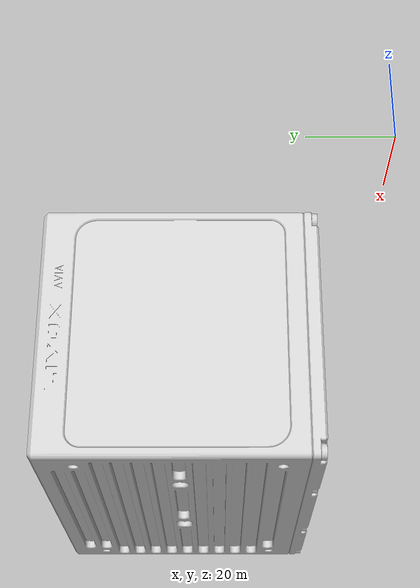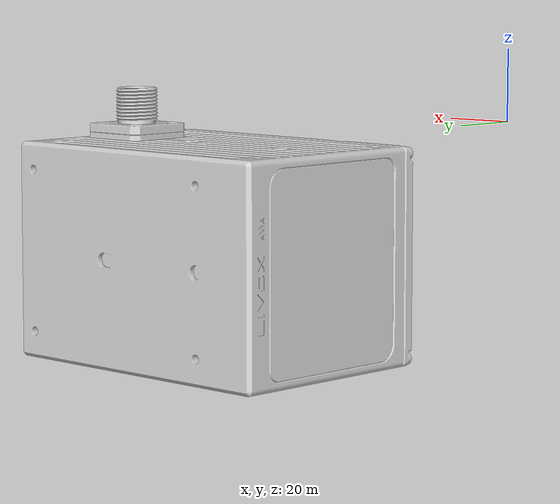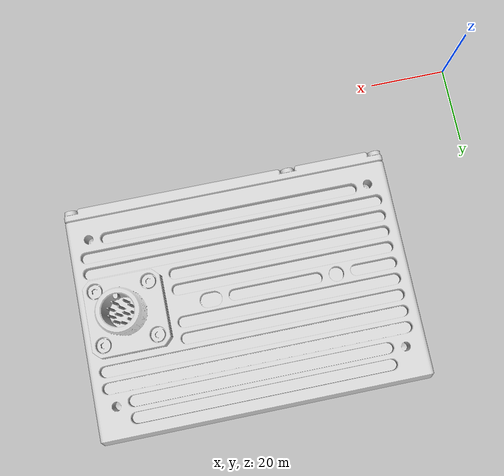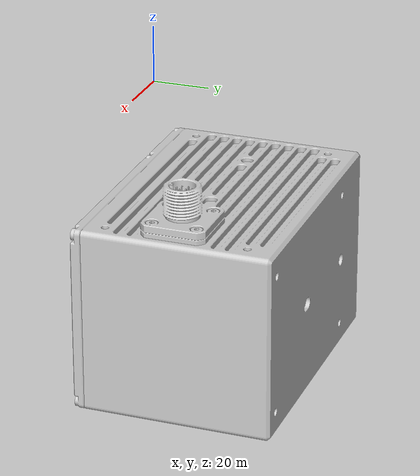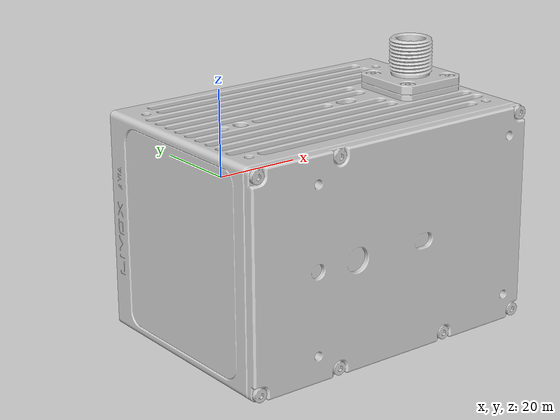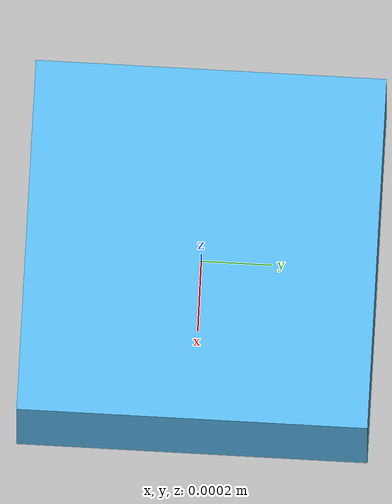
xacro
<?xml version="1.0" ?>
<!-- |    This document was autogenerated by xacro from mid40_zed2.urdf.xacro          | -->
<!-- |    EDITING THIS FILE BY HAND IS NOT RECOMMENDED                                 | -->
<robot name="livox_zed2">

  <link name="world"/>
  <link name="base_link">
    <inertial>
      <mass value="0.1"/>
      <inertia ixx="0.001" ixy="0" ixz="0" iyy="0.001" iyz="0" izz="0.001"/>
    </inertial>
    <visual>
      <origin rpy="0 0 0" xyz="0 0 0"/>
      <geometry>
        <box size="0.001 0.001 0.001"/>
      </geometry>
    </visual>
  </link>

  <link name="livox">
    <inertial>
      <mass value="0.1"/>
      <inertia ixx="0.001" ixy="0" ixz="0" iyy="0.001" iyz="0" izz="0.001"/>
    </inertial>
    <visual>
      <origin rpy="0 0 0" xyz="0 0 0"/>
      <geometry>
        <mesh filename="package://livox_laser_simulation/meshes/livox_avia.dae">
        </mesh>
      </geometry>
    </visual>
  </link>

  <joint name="joint1" type="fixed">
    <origin rpy="0 0 0" xyz="0 0 0"/>
    <parent link="world"/>
    <child link="base_link"/>
  </joint>

  <joint name="joint2" type="fixed">
    <parent link="base_link"/>
    <child link="livox"/>
    <origin rpy="0 0 0" xyz="0 0 1"/>
  </joint>

  <gazebo reference="livox">
    <sensor name="livox" type="ray">
      <pose>0 0 0 0 0 0</pose>
      <visualize>true</visualize>
      <update_rate>10</update_rate>
      <!-- This ray plgin is only for visualization. -->
      <plugin filename="liblivox_laser_simulation.so" name="gazebo_ros_laser_controller">
        <ray>
          <scan>
            <horizontal>
              <samples>100</samples>
              <resolution>1</resolution>
              <min_angle>-0.614</min_angle>
              <max_angle>0.614</max_angle>
            </horizontal>
            <vertical>
              <samples>50</samples>
              <resolution>1</resolution>
              <min_angle>-0.674</min_angle>
              <max_angle>0.674</max_angle>
            </vertical>
          </scan>
          <range>
            <min>0.0</min>
            <max>20.0</max>
            <resolution>0.002</resolution>
          </range>
          <noise>
            <type>gaussian</type>
            <mean>0.0</mean>
            <stddev>0.01</stddev>
          </noise>
        </ray>
        <samples>24000</samples>
        <downsample>1</downsample>
        <csv_file_name>package://livox_laser_simulation/scan_mode/avia.csv</csv_file_name>
        <ros_topic>scan</ros_topic>
      </plugin>
    </sensor>
  </gazebo>

  <!-- 相机和激光雷达外参 -->
  <joint name="camera_joint" type="fixed">
    <parent link="livox"/>
    <child link="camera"/>
    <origin rpy="0.0 0.0 0.0" xyz="0.0 0.0 0.05"/>
  </joint>

  <!-- Camera -->
  <link name="camera">
    <collision>
      <origin xyz="0 0 0" rpy="0 0 0"/>
      <geometry>
        <box size="0.001 0.001 0.001"/>
      </geometry>
    </collision>
    <visual>
      <origin xyz="0 0 0" rpy="0 0 0"/>
      <geometry>
        <box size="0.001 0.001 0.001"/>
      </geometry>
    </visual>
    <inertial>
      <mass value="1e-5" />
      <origin xyz="0 0 0" rpy="0 0 0"/>
      <inertia ixx="1e-6" ixy="0" ixz="0" iyy="1e-6" iyz="0" izz="1e-6" />
    </inertial>
  </link>
  <gazebo reference="camera">
    <sensor name="camera" type="camera">
      <always_on>true</always_on>
      <update_rate>5</update_rate>
      <camera>
        <horizontal_fov>1.37</horizontal_fov>
        <image>
          <format>B8G8R8</format>
          <width>1360</width>
          <height>1024</height>
        </image>
        <clip>
          <near>0.02</near>
          <far>300</far>
        </clip>
        <noise>
          <type>gaussian</type>
          <mean>0.0</mean>
          <stddev>0.0</stddev>
        </noise>
      </camera>
      <plugin filename="libgazebo_ros_camera.so" name="camera_controller">
        <cameraInfoTopicName>camera_info</cameraInfoTopicName>
        <updateRate>5</updateRate>
        <cameraName>camera</cameraName>
        <frameName>camera_link</frameName>
        <imageTopicName>image_raw</imageTopicName>
        <cameraInfoTopicName>camera_info</cameraInfoTopicName>
        <distortionK1>0.0</distortionK1>
        <distortionK2>0.0</distortionK2>
        <distortionK3>0.0</distortionK3>
        <distortionT1>0.0</distortionT1>
        <distortionT2>0.0</distortionT2>
      </plugin>
    </sensor>
  </gazebo>

  <gazebo>
    <static>true</static>
  </gazebo>
</robot>
